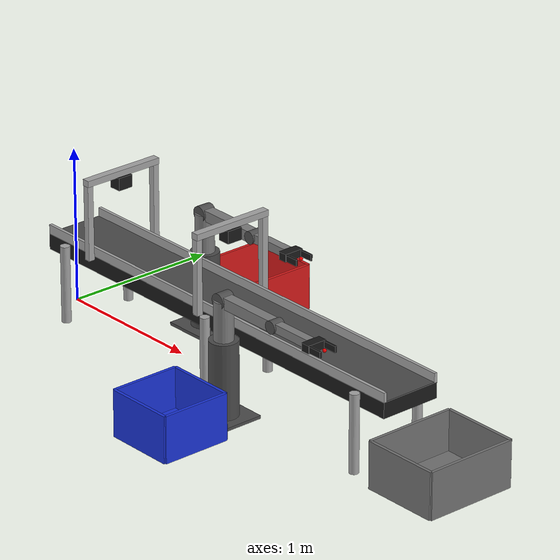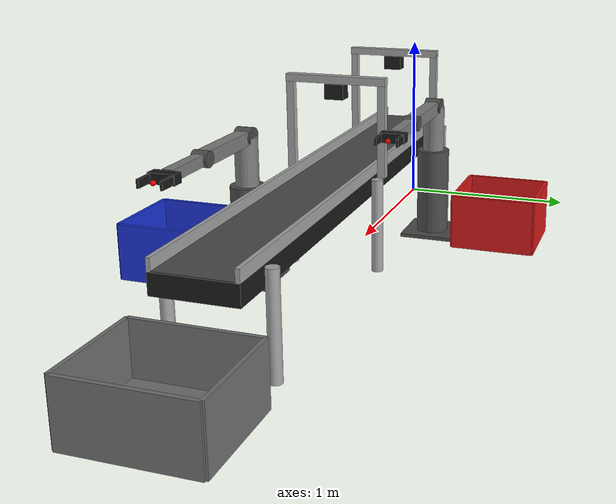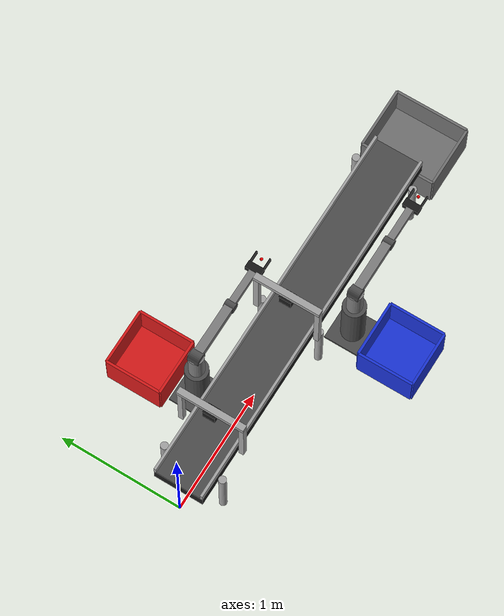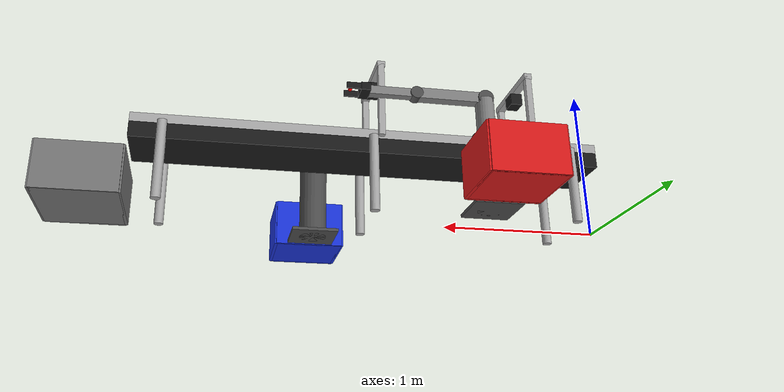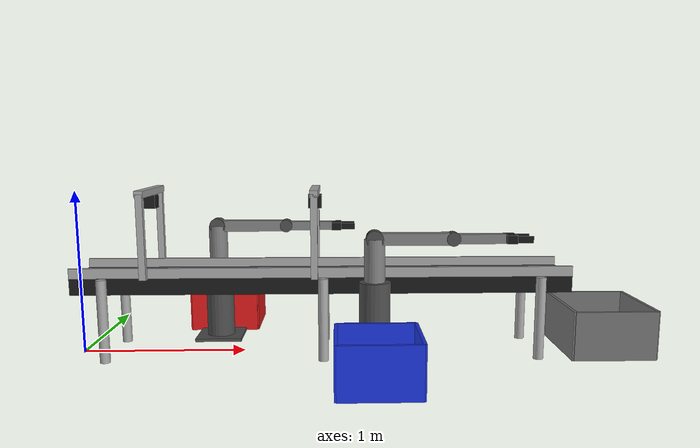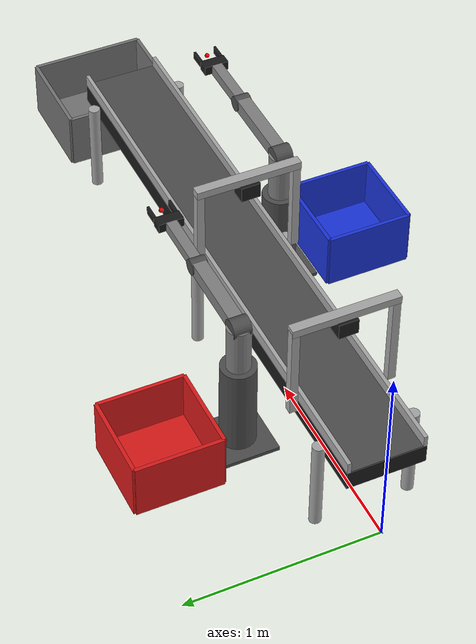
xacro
<?xml version="1.0"?>
<robot xmlns:xacro="http://www.ros.org/wiki/xacro" name="conveyor_sorter_system">

  <!-- PARAMETERS -->
  <xacro:property name="belt_length" value="3.0"/>
  <xacro:property name="belt_width" value="0.4"/>
  <xacro:property name="belt_height" value="0.1"/>
  <xacro:property name="belt_ground_clearance" value="0.5"/>

  <!-- Arm positions (Layout matching image1.png) -->
  <!-- Arm 1 (1st hand) on +Y side -->
  <xacro:property name="arm1_x" value="0.8"/>
  <xacro:property name="arm1_y" value="0.35"/>
  <xacro:property name="arm_base_z" value="0.5"/>

  <!-- Arm 2 (2nd hand) on -Y side -->
  <xacro:property name="arm2_x" value="1.8"/>
  <xacro:property name="arm2_y" value="-0.35"/>

  <!-- Bin positions (Matching image1.png) -->
  <!-- Red Bin ("box one") on +Y side beside Arm 1 -->
  <xacro:property name="red_bin_x" value="0.8"/>
  <xacro:property name="red_bin_y" value="0.75"/>
  <xacro:property name="red_bin_z" value="0.25"/>

  <!-- Blue Bin ("box two") on -Y side beside Arm 2 -->
  <xacro:property name="blue_bin_x" value="1.8"/>
  <xacro:property name="blue_bin_y" value="-0.75"/>
  <xacro:property name="blue_bin_z" value="0.25"/>

  <!-- Scrap Bin ("scrap boxes") at end of belt -->
  <xacro:property name="scrap_bin_x" value="3.25"/>
  <xacro:property name="scrap_bin_y" value="0.0"/>
  <xacro:property name="scrap_bin_z" value="0.25"/>

  <!-- MATERIALS -->
  <material name="belt_grey">
    <color rgba="0.3 0.3 0.3 1.0"/>
  </material>
  <material name="belt_black">
    <color rgba="0.1 0.1 0.1 1.0"/>
  </material>
  <material name="arm_grey">
    <color rgba="0.5 0.5 0.5 1.0"/>
  </material>
  <material name="arm_dark_grey">
    <color rgba="0.3 0.3 0.3 1.0"/>
  </material>
  <material name="gripper_black">
    <color rgba="0.1 0.1 0.1 1.0"/>
  </material>
  <material name="red_bin">
    <color rgba="0.85 0.1 0.1 1.0"/>
  </material>
  <material name="blue_bin">
    <color rgba="0.1 0.2 0.85 1.0"/>
  </material>
  <material name="scrap_bin">
    <color rgba="0.45 0.45 0.45 1.0"/>
  </material>
  <material name="box_red">
    <color rgba="1.0 0.0 0.0 1.0"/>
  </material>
  <material name="box_blue">
    <color rgba="0.0 0.0 1.0 1.0"/>
  </material>
  <material name="box_black">
    <color rgba="0.05 0.05 0.05 1.0"/>
  </material>
  <material name="support_metal">
    <color rgba="0.65 0.65 0.65 1.0"/>
  </material>

  <!-- WORLD / BASE LINK -->
  <link name="world"/>

  <joint name="world_joint" type="fixed">
    <parent link="world"/>
    <child link="base_link"/>
    <origin xyz="0 0 0" rpy="0 0 0"/>
  </joint>

  <link name="base_link">
    <visual>
      <geometry>
        <box size="0.01 0.01 0.01"/>
      </geometry>
      <material name="support_metal"/>
    </visual>
  </link>

  <!-- CONVEYOR BELT -->
  <xacro:include filename="conveyor_belt.urdf.xacro"/>
  <xacro:conveyor_belt
    belt_length="${belt_length}"
    belt_width="${belt_width}"
    belt_height="${belt_height}"
    belt_ground_clearance="${belt_ground_clearance}"
    parent_link="base_link"/>

  <!-- ROBOT ARMS (base_z = pedestal height = belt height) -->
  <xacro:include filename="robot_arm.urdf.xacro"/>
  <xacro:robot_arm arm_name="arm1" parent_link="base_link"
                   x="${arm1_x}" y="${arm1_y}" base_z="${arm_base_z}"
                   link_color="arm_grey" gripper_color="gripper_black"/>
  <xacro:robot_arm arm_name="arm2" parent_link="base_link"
                   x="${arm2_x}" y="${arm2_y}" base_z="${arm_base_z}"
                   link_color="arm_grey" gripper_color="gripper_black"/>

  <!-- BINS (standing on the floor, z = 0) -->
  <xacro:include filename="bins.urdf.xacro"/>
  <xacro:bin bin_name="red_bin" parent_link="base_link"
             bin_x="${red_bin_x}" bin_y="${red_bin_y}" bin_z="0.0"
             bin_color="red_bin" width="0.45" depth="0.45" height="0.3"/>
  <xacro:bin bin_name="blue_bin" parent_link="base_link"
             bin_x="${blue_bin_x}" bin_y="${blue_bin_y}" bin_z="0.0"
             bin_color="blue_bin" width="0.45" depth="0.45" height="0.3"/>
  <xacro:bin bin_name="scrap_bin" parent_link="base_link"
             bin_x="${scrap_bin_x}" bin_y="${scrap_bin_y}" bin_z="0.0"
             bin_color="scrap_bin" width="0.5" depth="0.6" height="0.3"/>

</robot>

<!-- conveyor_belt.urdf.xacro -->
<robot xmlns:xacro="http://www.ros.org/wiki/xacro" name="conveyor_belt">

  <!-- All geometry is expressed in the world/base_link frame (links sit at the origin). -->
  <xacro:macro name="conveyor_belt" params="belt_length belt_width belt_height belt_ground_clearance parent_link">

    <link name="conveyor_base">
      <visual>
        <origin xyz="${belt_length/2} 0 ${belt_ground_clearance - belt_height/2}" rpy="0 0 0"/>
        <geometry><box size="${belt_length} ${belt_width} ${belt_height}"/></geometry>
        <material name="belt_black"/>
      </visual>
      <!-- belt surface -->
      <visual>
        <origin xyz="${belt_length/2} 0 ${belt_ground_clearance + 0.0025}" rpy="0 0 0"/>
        <geometry><box size="${belt_length} ${belt_width - 0.04} 0.005"/></geometry>
        <material name="belt_grey"/>
      </visual>
      <!-- side rails -->
      <visual>
        <origin xyz="${belt_length/2} ${belt_width/2 - 0.01} ${belt_ground_clearance + 0.03}" rpy="0 0 0"/>
        <geometry><box size="${belt_length} 0.02 0.06"/></geometry>
        <material name="support_metal"/>
      </visual>
      <visual>
        <origin xyz="${belt_length/2} ${-(belt_width/2 - 0.01)} ${belt_ground_clearance + 0.03}" rpy="0 0 0"/>
        <geometry><box size="${belt_length} 0.02 0.06"/></geometry>
        <material name="support_metal"/>
      </visual>
      <!-- legs -->
      <visual><origin xyz="0.2 ${belt_width/2 + 0.04} ${belt_ground_clearance/2}"/><geometry><cylinder radius="0.03" length="${belt_ground_clearance}"/></geometry><material name="support_metal"/></visual>
      <visual><origin xyz="0.2 ${-(belt_width/2 + 0.04)} ${belt_ground_clearance/2}"/><geometry><cylinder radius="0.03" length="${belt_ground_clearance}"/></geometry><material name="support_metal"/></visual>
      <visual><origin xyz="1.5 ${belt_width/2 + 0.04} ${belt_ground_clearance/2}"/><geometry><cylinder radius="0.03" length="${belt_ground_clearance}"/></geometry><material name="support_metal"/></visual>
      <visual><origin xyz="1.5 ${-(belt_width/2 + 0.04)} ${belt_ground_clearance/2}"/><geometry><cylinder radius="0.03" length="${belt_ground_clearance}"/></geometry><material name="support_metal"/></visual>
      <visual><origin xyz="2.8 ${belt_width/2 + 0.04} ${belt_ground_clearance/2}"/><geometry><cylinder radius="0.03" length="${belt_ground_clearance}"/></geometry><material name="support_metal"/></visual>
      <visual><origin xyz="2.8 ${-(belt_width/2 + 0.04)} ${belt_ground_clearance/2}"/><geometry><cylinder radius="0.03" length="${belt_ground_clearance}"/></geometry><material name="support_metal"/></visual>
    </link>

    <joint name="conveyor_base_joint" type="fixed">
      <parent link="${parent_link}"/>
      <child link="conveyor_base"/>
      <origin xyz="0 0 0" rpy="0 0 0"/>
    </joint>

    <!-- Colour-sensor gantries (match sensor1_x / sensor2_x in the YAML) -->
    <xacro:camera_gantry name="cam1" x="0.45" belt_width="${belt_width}" z0="${belt_ground_clearance}"/>
    <xacro:camera_gantry name="cam2" x="1.45" belt_width="${belt_width}" z0="${belt_ground_clearance}"/>

  </xacro:macro>

  <xacro:macro name="camera_gantry" params="name x belt_width z0">
    <link name="${name}_gantry">
      <visual>
        <origin xyz="${x} ${belt_width/2 + 0.05} ${z0 + 0.25}" rpy="0 0 0"/>
        <geometry><box size="0.04 0.04 0.5"/></geometry>
        <material name="support_metal"/>
      </visual>
      <visual>
        <origin xyz="${x} ${-(belt_width/2 + 0.05)} ${z0 + 0.25}" rpy="0 0 0"/>
        <geometry><box size="0.04 0.04 0.5"/></geometry>
        <material name="support_metal"/>
      </visual>
      <visual>
        <origin xyz="${x} 0 ${z0 + 0.5}" rpy="0 0 0"/>
        <geometry><box size="0.05 ${belt_width + 0.14} 0.04"/></geometry>
        <material name="support_metal"/>
      </visual>
      <visual>
        <origin xyz="${x} 0 ${z0 + 0.44}" rpy="0 0 0"/>
        <geometry><box size="0.08 0.10 0.08"/></geometry>
        <material name="gripper_black"/>
      </visual>
    </link>
    <joint name="${name}_gantry_joint" type="fixed">
      <parent link="conveyor_base"/>
      <child link="${name}_gantry"/>
      <origin xyz="0 0 0" rpy="0 0 0"/>
    </joint>
  </xacro:macro>

</robot>

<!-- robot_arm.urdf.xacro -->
<robot xmlns:xacro="http://www.ros.org/wiki/xacro" name="robot_arm">

  <xacro:macro name="robot_arm" params="arm_name parent_link x y base_z link_color gripper_color">

    <!-- Pedestal: floor -> base_z -->
    <link name="${arm_name}_base">
      <visual>
        <origin xyz="0 0 ${base_z/2}" rpy="0 0 0"/>
        <geometry><cylinder radius="0.09" length="${base_z}"/></geometry>
        <material name="arm_dark_grey"/>
      </visual>
      <visual>
        <origin xyz="0 0 0.01" rpy="0 0 0"/>
        <geometry><box size="0.3 0.3 0.02"/></geometry>
        <material name="arm_dark_grey"/>
      </visual>
    </link>
    <joint name="${arm_name}_base_joint" type="fixed">
      <parent link="${parent_link}"/>
      <child link="${arm_name}_base"/>
      <origin xyz="${x} ${y} 0" rpy="0 0 0"/>
    </joint>

    <!-- Joint 1: yaw -->
    <link name="${arm_name}_link1">
      <visual>
        <origin xyz="0 0 0.125" rpy="0 0 0"/>
        <geometry><cylinder radius="0.06" length="0.25"/></geometry>
        <material name="${link_color}"/>
      </visual>
    </link>
    <joint name="${arm_name}_joint1" type="revolute">
      <parent link="${arm_name}_base"/>
      <child link="${arm_name}_link1"/>
      <origin xyz="0 0 ${base_z}" rpy="0 0 0"/>
      <axis xyz="0 0 1"/>
      <limit lower="-3.14" upper="3.14" effort="20" velocity="3.0"/>
    </joint>

    <!-- Joint 2: shoulder pitch (positive = arm tilts down) -->
    <link name="${arm_name}_link2">
      <visual>
        <origin xyz="0 0 0" rpy="1.5708 0 0"/>
        <geometry><cylinder radius="0.05" length="0.09"/></geometry>
        <material name="arm_dark_grey"/>
      </visual>
      <visual>
        <origin xyz="0.225 0 0" rpy="0 0 0"/>
        <geometry><box size="0.45 0.07 0.07"/></geometry>
        <material name="${link_color}"/>
      </visual>
    </link>
    <joint name="${arm_name}_joint2" type="revolute">
      <parent link="${arm_name}_link1"/>
      <child link="${arm_name}_link2"/>
      <origin xyz="0 0 0.25" rpy="0 0 0"/>
      <axis xyz="0 1 0"/>
      <limit lower="-3.14" upper="3.14" effort="20" velocity="3.0"/>
    </joint>

    <!-- Joint 3: elbow pitch (positive = forearm folds down) -->
    <link name="${arm_name}_link3">
      <visual>
        <origin xyz="0 0 0" rpy="1.5708 0 0"/>
        <geometry><cylinder radius="0.04" length="0.08"/></geometry>
        <material name="arm_dark_grey"/>
      </visual>
      <visual>
        <origin xyz="0.15 0 0" rpy="0 0 0"/>
        <geometry><box size="0.30 0.055 0.055"/></geometry>
        <material name="${link_color}"/>
      </visual>
    </link>
    <joint name="${arm_name}_joint3" type="revolute">
      <parent link="${arm_name}_link2"/>
      <child link="${arm_name}_link3"/>
      <origin xyz="0.45 0 0" rpy="0 0 0"/>
      <axis xyz="0 1 0"/>
      <limit lower="-3.14" upper="3.14" effort="15" velocity="3.0"/>
    </joint>

    <!-- Gripper body -->
    <link name="${arm_name}_gripper_base">
      <visual>
        <origin xyz="0.03 0 0" rpy="0 0 0"/>
        <geometry><box size="0.06 0.13 0.05"/></geometry>
        <material name="${gripper_color}"/>
      </visual>
    </link>
    <joint name="${arm_name}_gripper_base_joint" type="fixed">
      <parent link="${arm_name}_link3"/>
      <child link="${arm_name}_gripper_base"/>
      <origin xyz="0.30 0 0" rpy="0 0 0"/>
    </joint>

    <!-- Fingers (open = 0.03, closed = 0.0; closed gap fits the 0.1 m box) -->
    <link name="${arm_name}_gripper_finger1">
      <visual>
        <origin xyz="0.045 0 0" rpy="0 0 0"/>
        <geometry><box size="0.09 0.012 0.04"/></geometry>
        <material name="${gripper_color}"/>
      </visual>
    </link>
    <joint name="${arm_name}_gripper_finger1_joint" type="prismatic">
      <parent link="${arm_name}_gripper_base"/>
      <child link="${arm_name}_gripper_finger1"/>
      <origin xyz="0.06 0.056 0" rpy="0 0 0"/>
      <axis xyz="0 1 0"/>
      <limit lower="0" upper="0.03" effort="10" velocity="0.5"/>
    </joint>

    <link name="${arm_name}_gripper_finger2">
      <visual>
        <origin xyz="0.045 0 0" rpy="0 0 0"/>
        <geometry><box size="0.09 0.012 0.04"/></geometry>
        <material name="${gripper_color}"/>
      </visual>
    </link>
    <joint name="${arm_name}_gripper_finger2_joint" type="prismatic">
      <parent link="${arm_name}_gripper_base"/>
      <child link="${arm_name}_gripper_finger2"/>
      <origin xyz="0.06 -0.056 0" rpy="0 0 0"/>
      <axis xyz="0 -1 0"/>
      <limit lower="0" upper="0.03" effort="10" velocity="0.5"/>
    </joint>

    <!-- Tool tip: grasp point (box centre is held here) -->
    <link name="${arm_name}_tool_tip">
      <visual>
        <geometry><sphere radius="0.012"/></geometry>
        <material name="box_red"/>
      </visual>
    </link>
    <joint name="${arm_name}_tool_tip_joint" type="fixed">
      <parent link="${arm_name}_gripper_base"/>
      <child link="${arm_name}_tool_tip"/>
      <origin xyz="0.12 0 0" rpy="0 0 0"/>
    </joint>

  </xacro:macro>
</robot>

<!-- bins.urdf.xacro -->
<robot xmlns:xacro="http://www.ros.org/wiki/xacro" name="bins">

  <!-- Bin Macro -->
  <xacro:macro name="bin" params="bin_name parent_link bin_x bin_y bin_z bin_color width:=0.45 depth:=0.45 height:=0.3">
    <link name="${bin_name}_base">
      <visual>
        <origin xyz="0 0 0.02" rpy="0 0 0"/>
        <geometry>
          <box size="${width} ${depth} 0.04"/>
        </geometry>
        <material name="${bin_color}"/>
      </visual>
      <collision>
        <origin xyz="0 0 0.02" rpy="0 0 0"/>
        <geometry>
          <box size="${width} ${depth} 0.04"/>
        </geometry>
      </collision>
    </link>

    <joint name="${bin_name}_base_joint" type="fixed">
      <parent link="${parent_link}"/>
      <child link="${bin_name}_base"/>
      <origin xyz="${bin_x} ${bin_y} ${bin_z}" rpy="0 0 0"/>
    </joint>

    <!-- Bin walls relative to bin_base -->
    <!-- Front wall (+y) -->
    <link name="${bin_name}_wall_front">
      <visual>
        <origin xyz="0 ${depth/2} ${height/2}" rpy="0 0 0"/>
        <geometry>
          <box size="${width} 0.02 ${height}"/>
        </geometry>
        <material name="${bin_color}"/>
      </visual>
    </link>
    <joint name="${bin_name}_wall_front_joint" type="fixed">
      <parent link="${bin_name}_base"/>
      <child link="${bin_name}_wall_front"/>
      <origin xyz="0 0 0" rpy="0 0 0"/>
    </joint>

    <!-- Back wall (-y) -->
    <link name="${bin_name}_wall_back">
      <visual>
        <origin xyz="0 ${-depth/2} ${height/2}" rpy="0 0 0"/>
        <geometry>
          <box size="${width} 0.02 ${height}"/>
        </geometry>
        <material name="${bin_color}"/>
      </visual>
    </link>
    <joint name="${bin_name}_wall_back_joint" type="fixed">
      <parent link="${bin_name}_base"/>
      <child link="${bin_name}_wall_back"/>
      <origin xyz="0 0 0" rpy="0 0 0"/>
    </joint>

    <!-- Left wall (-x) -->
    <link name="${bin_name}_wall_left">
      <visual>
        <origin xyz="${-width/2} 0 ${height/2}" rpy="0 0 0"/>
        <geometry>
          <box size="0.02 ${depth} ${height}"/>
        </geometry>
        <material name="${bin_color}"/>
      </visual>
    </link>
    <joint name="${bin_name}_wall_left_joint" type="fixed">
      <parent link="${bin_name}_base"/>
      <child link="${bin_name}_wall_left"/>
      <origin xyz="0 0 0" rpy="0 0 0"/>
    </joint>

    <!-- Right wall (+x) -->
    <link name="${bin_name}_wall_right">
      <visual>
        <origin xyz="${width/2} 0 ${height/2}" rpy="0 0 0"/>
        <geometry>
          <box size="0.02 ${depth} ${height}"/>
        </geometry>
        <material name="${bin_color}"/>
      </visual>
    </link>
    <joint name="${bin_name}_wall_right_joint" type="fixed">
      <parent link="${bin_name}_base"/>
      <child link="${bin_name}_wall_right"/>
      <origin xyz="0 0 0" rpy="0 0 0"/>
    </joint>

  </xacro:macro>

</robot>
